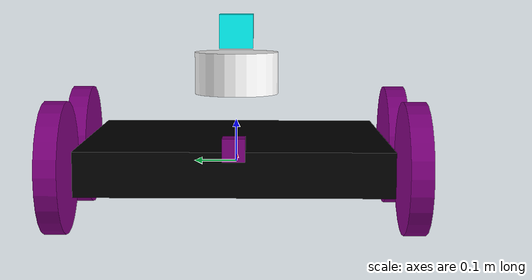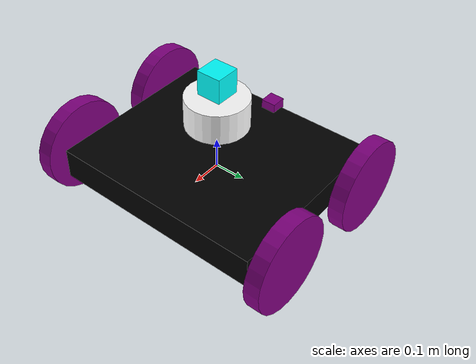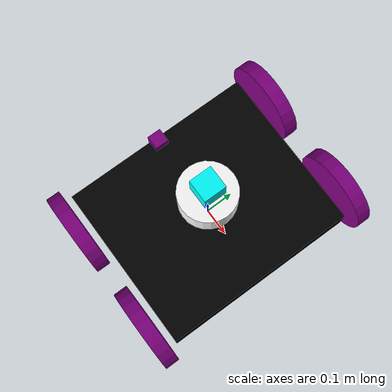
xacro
<?xml version="1.0"?>

<robot xmlns:xacro="http://wwww.ros.org/wiki/xacro" name="rover">

<link name="base_footprint"/>

<xacro:property name="constant" value="1/12"/>
<xacro:property name="mass" value="10.0"/>
<xacro:property name="width" value="0.7"/>
<xacro:property name="height" value="0.1"/>
<xacro:property name="length" value="0.6"/>

<xacro:property name="radius" value="0.15"/>

<xacro:property name="camera_link" value="0.05" /> <!-- Size of square 'camera' box -->
<xacro:property name="imu_link" value="0.05" /> <!-- Size of square 'imus' box -->
<xacro:property name="kinect_link" value="0.08" />
<link name="base_link">
    <inertial>
        <mass value="${mass}"/>
        <origin xyz="0.0 0.0 0.0" rpy="0.0 0.0 0.0"/>
        <inertia ixx="0.054" ixy="0.0"
        ixz="0.0" iyy="0.041"
        iyz="0.0" izz="0.09"/>
    </inertial>
    <visual name="">
        <origin xyz="0.0 0.0 0.0" rpy="0.0 0.0 0.0"/>
        <geometry>
            <box size="${length} ${width} ${height}" />
        </geometry>
        <material name="black">
                 <color rgba="0.0 0.0 0.0 1.0" />
        </material>

    </visual>
    <collision>
    <material>
  <ambient>0 0 0 1</ambient>
  <diffuse>0 0 0 1</diffuse>
  <specular>0.1 0.1 0.1 1</specular>
  <emissive>0 0 0 1</emissive>
</material>

        <geometry>
            <box size="${length} ${width} ${height}" />
        </geometry>
    </collision>
</link>

<joint name="base_joint" type="fixed">
    <parent link="base_footprint"/>
    <child link="base_link"/>
    <origin xyz="0 0 0.0135" rpy="0 0 0"/>
    <axis xyz="0 0 0"/>
</joint>

<!-- Rear right wheel-->

<link name="wheel_rear_right_link">
    <visual name="">
    <origin xyz="0.0 0.0 0.0" rpy="0.0 0.0 0.0"/>
        <geometry>
            <cylinder radius="${radius}" length="0.05"/>
        </geometry>
        <material name="purple">
            <color rgba="0.5 0.0 0.5 1.0" />
        </material>
    </visual>
    <collision>
        <origin xyz="0.0 0.0 0.0" rpy="0.0 0.0 0.0"/>
        <geometry>
            <cylinder radius="${radius}" length="0.05"/>
        </geometry>
    </collision>
    <inertial>
        <mass value="0.5"/>
        <origin xyz="0.0 0.0 0.0" rpy="0.0 0.0 0.0"/>
        <inertia ixx="0.0" ixy="0.0" ixz="0.0" iyy="0.0" iyz="0.0" izz="0.0"/>
    </inertial>
</link>

<joint name="wheel_rear_right_joint" type="continuous">
    <parent link="base_link"/>
    <child link="wheel_rear_right_link"/>
    <axis xyz="0 0 1"/>
    <origin xyz="0.2 0.40 0" rpy="1.57 0 0"/>
</joint>

<!-- Rear left wheel-->

<link name="wheel_rear_left_link">
    <visual name="">
    <origin xyz="0.0 0.0 0.0" rpy="0.0 0.0 0.0"/>
        <geometry>
            <cylinder radius="${radius}" length="0.05"/>
        </geometry>
        <material name="purple">
            <color rgba="0.5 0.0 0.5 1.0" />
        </material>
    </visual>
    <collision>
        <origin xyz="0.0 0.0 0.0" rpy="0.0 0.0 0.0"/>
        <geometry>
            <cylinder radius="${radius}" length="0.05"/>
        </geometry>
    </collision>
    <inertial>
        <mass value="0.5"/>
        <origin xyz="0.0 0.0 0.0" rpy="0.0 0.0 0.0"/>
        <inertia ixx="0.0" ixy="0.0" ixz="0.0" iyy="0.0" iyz="0.0" izz="0.0"/>
    </inertial>
</link>

<joint name="wheel_rear_left_joint" type="continuous">
    <parent link="base_link"/>
    <child link="wheel_rear_left_link"/>
    <axis xyz="0 0 1"/>
    <origin xyz="0.2 -0.40 0" rpy="1.57 0 0"/>
</joint>

<!-- Front right wheel-->

<link name="wheel_front_right_link">
    <visual name="">
    <origin xyz="0.0 0.0 0.0" rpy="0.0 0.0 0.0"/>
        <geometry>
            <cylinder radius="${radius}" length="0.05"/>
        </geometry>
        <material name="purple">
            <color rgba="0.5 0.0 0.5 1.0" />
        </material>
    </visual>
    <collision>
        <origin xyz="0.0 0.0 0.0" rpy="0.0 0.0 0.0"/>
        <geometry>
            <cylinder radius="${radius}" length="0.05"/>
        </geometry>
    </collision>
    <inertial>
        <mass value="0.5"/>
        <origin xyz="0.0 0.0 0.0" rpy="0.0 0.0 0.0"/>
        <inertia ixx="0.0" ixy="0.0" ixz="0.0" iyy="0.0" iyz="0.0" izz="0.0"/>
    </inertial>
</link>

<joint name="wheel_front_right_joint" type="continuous">
    <parent link="base_link"/>
    <child link="wheel_front_right_link"/>
    <axis xyz="0 0 1"/>
    <origin xyz="-0.2 0.40 0" rpy="1.57 0 0"/>
</joint>

<!-- Front left wheel-->

<link name="wheel_front_left_link">
    <visual name="">
    <origin xyz="0.0 0.0 0.0" rpy="0.0 0.0 0.0"/>
        <geometry>
            <cylinder radius="${radius}" length="0.05"/>
        </geometry>
        <material name="purple">
            <color rgba="0.5 0.0 0.5 1.0" />
        </material>
    </visual>
    <collision>
        <origin xyz="0.0 0.0 0.0" rpy="0.0 0.0 0.0"/>
        <geometry>
            <cylinder radius="${radius}" length="0.05"/>
        </geometry>
    </collision>
    <inertial>
        <mass value="0.5"/>
        <origin xyz="0.0 0.0 0.0" rpy="0.0 0.0 0.0"/>
        <inertia ixx="0.0" ixy="0.0" ixz="0.0" iyy="0.0" iyz="0.0" izz="0.0"/>
    </inertial>
</link>

<joint name="wheel_front_left_joint" type="continuous">
    <parent link="base_link"/>
    <child link="wheel_front_left_link"/>
    <axis xyz="0 0 1"/>
    <origin xyz="-0.2 -0.40 0" rpy="1.57 0 0"/>

</joint>

  <!-- Camera -->
<link name="camera_link">
    <collision>
      <origin xyz="0 0 0" rpy="0 0 0"/>
      <geometry>
    <box size="${camera_link} ${camera_link} ${camera_link}"/>
      </geometry>
    </collision>

    <visual>
      <origin xyz="0 0 0" rpy="0 0 0"/>
      <geometry>
    <box size="${camera_link} ${camera_link} ${camera_link}"/>
      </geometry>
      <material name="purple"/>
    </visual>

    <inertial>
      <mass value="1e-5" />
      <origin xyz="0 0 0" rpy="0 0 0"/>
      <inertia ixx="1e-6" ixy="0" ixz="0" iyy="1e-6" iyz="0" izz="1e-6" />
    </inertial>
</link>
<joint name="camera_joint" type="fixed">
    <axis xyz="0 1 0" />
    <origin xyz="-0.285 0 0.055" rpy="0 0.0 3.14"/>
    <parent link="base_link"/>
    <child link="camera_link"/>
</joint>

<!--Kinect-->

<link name="kinect_link">
    <collision>
      <origin xyz="0 0 0" rpy="0 0 0"/>
      <geometry>
    <box size="${kinect_link} ${kinect_link} ${kinect_link}"/>
      </geometry>
    </collision>

    <visual>
      <origin xyz="0 0 0" rpy="0 0 0"/>
      <geometry>
    <box size="${kinect_link} ${kinect_link} ${kinect_link}"/>
      </geometry>
      <material name="neon">
      <color rgba="0.0 1.0 1.0 1.0" />
      </material>

    </visual>

    <inertial>
      <mass value="1e-5" />
      <origin xyz="0 0 0" rpy="0 0 0"/>
      <inertia ixx="1e-6" ixy="0" ixz="0" iyy="1e-6" iyz="0" izz="1e-6" />
    </inertial>
</link>

<joint name="kinect_joint" type="fixed">
    <axis xyz="0 0 0.3" />
    <origin xyz="0.0 0.0 0.3" rpy="0 0 3.14"/>
    <parent link="base_link"/>
    <child link="kinect_link"/>
</joint>

<joint name="kinect_optical_joint" type="fixed">
    <axis xyz="0 0 0.3" />
    <origin xyz="0 0 0" rpy="${-pi/2} 0 ${-pi/2}"/>
    <parent link="kinect_link"/>
    <child link="kinect_link_optical"/>
</joint>

<link name="kinect_link_optical">
</link>

<gazebo reference="kinect_link">
  <sensor name="kinect_link_kinect" type="depth">
    <update_rate>20</update_rate>
    <camera>
      <horizontal_fov>2.5</horizontal_fov>
      <image>
        <width>640</width>
        <height>480</height>
        <format>R8G8B8</format>
      </image>
      <clip>
        <near>0.5</near>
        <far>100</far>
      </clip>
    </camera>
    <plugin name="kinect_link_controller" filename="libgazebo_ros_openni_kinect.so">
      <baseline>0.2</baseline>
      <alwaysOn>true</alwaysOn>
      <updateRate>1.0</updateRate>
      <cameraName>kinect</cameraName>
      <imageTopicName>/kinect/color/image_raw</imageTopicName>
      <cameraInfoTopicName>/kinect/color/kinect_info</cameraInfoTopicName>
      <depthImageTopicName>/kinect/depth/image_raw</depthImageTopicName>
      <depthImageInfoTopicName>/kinect/depth/kinect_info</depthImageInfoTopicName>
      <pointCloudTopicName>/kinect/depth/points</pointCloudTopicName>
      <frameName>kinect_link_optical</frameName>
      <pointCloudCutoff>0.5</pointCloudCutoff>
      <pointCloudCutoffMax>100.0</pointCloudCutoffMax>
      <distortionK1>0.00000001</distortionK1>
      <distortionK2>0.00000001</distortionK2>
      <distortionK3>0.00000001</distortionK3>
      <distortionT1>0.00000001</distortionT1>
      <distortionT2>0.00000001</distortionT2>
      <CxPrime>0</CxPrime>
      <Cx>0</Cx>
      <Cy>0</Cy>
      <focalLength>0</focalLength>
      <hackBaseline>0</hackBaseline>
    </plugin>
  </sensor>
</gazebo>

  <!-- IMU -->
<link name="imu_link">
    <collision>
      <origin xyz="0 0 0" rpy="0 0 0"/>
      <geometry>
    <box size="${imu_link} ${imu_link} ${imu_link}"/>
      </geometry>
    </collision>

    <visual>
      <origin xyz="0 0 0" rpy="0 0 0"/>
      <geometry>
    <box size="${imu_link} ${imu_link} ${imu_link}"/>
      </geometry>
      <material name="black">
            <color rgba="0.0 0.0 0.0 1.0" />

        </material>
    </visual>

    <inertial>
      <mass value="1e-5" />
      <origin xyz="0 0 0" rpy="0 0 0"/>
      <inertia ixx="1e-6" ixy="0" ixz="0" iyy="1e-6" iyz="0" izz="1e-6" />
    </inertial>
</link>
<joint name="imu_joint" type="fixed">
    <axis xyz="0 0 0" />
    <origin xyz="0.0 0.0 0.0" rpy="0 0 1.57"/>
    <parent link="base_link"/>
    <child link="imu_link"/>
</joint>

<!--hokuyu link and joint-->
<link name="hokuyu_link">
    <collision>
      <origin xyz="0 0 0" rpy="0 0 0"/>
      <geometry>
      <cylinder length="0.3" radius="0.1"/>
      </geometry>
    </collision>

    <visual>
      <origin xyz="0 0 0" rpy="0 0 0"/>
      <geometry>
      <cylinder length="0.1" radius="0.1"/>
      </geometry>
      <material name="white">
            <color rgba="1.0 1.0 1.0 1.0" />

        </material>
    </visual>

    <inertial>
      <mass value="1e-5" />
      <origin xyz="0 0 0" rpy="0 0 0"/>
      <inertia ixx="1e-6" ixy="0" ixz="0" iyy="1e-6" iyz="0" izz="1e-6" />
    </inertial>
</link>
<joint name="hokuyu_joint" type="fixed">
    <axis xyz="0 1 0" />
    <origin xyz="0.0 0.0 0.2" rpy="0 0 3.14"/>
    <parent link="base_link"/>
    <child link="hokuyu_link"/>
</joint>

  <!-- camera -->
  <gazebo reference="camera_link">
    <sensor type="camera" name="camera1">
      <update_rate>30.0</update_rate>
      <camera name="head">
        <horizontal_fov>1.3962634</horizontal_fov>
        <image>
          <width>800</width>
          <height>800</height>
          <format>R8G8B8</format>
        </image>
        <clip>
          <near>0.02</near>
          <far>300</far>
        </clip>
        <noise>
          <type>gaussian</type>
          <!-- Noise is sampled independently per pixel on each frame.
               That pixel's noise value is added to each of its color
               channels, which at that point lie in the range [0,1]. -->
          <mean>0.0</mean>
          <stddev>0.007</stddev>
        </noise>
      </camera>
      <plugin name="camera_controller" filename="libgazebo_ros_camera.so">
        <alwaysOn>true</alwaysOn>
        <updateRate>30.0</updateRate>
        <cameraName>mobile_robot/camera1</cameraName>
        <imageTopicName>image_raw</imageTopicName>
        <cameraInfoTopicName>camera_info</cameraInfoTopicName>
        <frameName>camera_link</frameName>
        <hackBaseline>0.07</hackBaseline>
        <distortionK1>0.0</distortionK1>
        <distortionK2>0.0</distortionK2>
        <distortionK3>0.0</distortionK3>
        <distortionT1>0.0</distortionT1>
        <distortionT2>0.0</distortionT2>
      </plugin>
    </sensor>
  </gazebo>

<gazebo>
  <plugin name="skid_steer_drive_controller" filename="libgazebo_ros_skid_steer_drive.so">
    <updateRate>100.0</updateRate>
    <robotNamespace>/</robotNamespace>
    <leftFrontJoint>wheel_front_left_joint</leftFrontJoint>
    <rightFrontJoint>wheel_front_right_joint</rightFrontJoint>
    <leftRearJoint>wheel_rear_left_joint</leftRearJoint>
    <rightRearJoint>wheel_rear_right_joint</rightRearJoint>
    <wheelSeparation>0.7</wheelSeparation>
    <wheelDiameter>0.30</wheelDiameter>
    <robotBaseFrame>base_link</robotBaseFrame>
    <torque>5</torque>
    <topicName>/cmd_vel</topicName>
    <broadcastTF>false</broadcastTF>
  </plugin>
</gazebo>

<gazebo>
    <plugin name="imu_plugin" filename="libgazebo_ros_imu.so">
      <alwaysOn>true</alwaysOn>
      <bodyName>imu_link</bodyName>
      <topicName>imu</topicName>
      <serviceName>imu_service</serviceName>
      <gaussianNoise>0.0</gaussianNoise>
      <frameName>imu_link</frameName>
      <updateRate>50.0</updateRate>
    </plugin>
  </gazebo>

<!--Hokuyo lidar plugin-->

<gazebo reference="hokuyu_link">
    <sensor type="ray" name="head_hokuyo_sensor">
      <pose>0 0 0 0 0 0</pose>
      <visualize>true</visualize>
      <update_rate>40</update_rate>
      <ray>
        <scan>
          <horizontal>
            <samples>270</samples>
            <resolution>1</resolution>
            <min_angle>-2.35</min_angle>
            <max_angle>2.35</max_angle>
          </horizontal>
        </scan>
        <range>
          <min>0.20</min>
          <max>11</max>
          <resolution>0.01</resolution>
        </range>
        <noise>
          <type>gaussian</type>
          <mean>0.0</mean>
          <stddev>0.01</stddev>
        </noise>
      </ray>
      <plugin name="gazebo_ros_head_hokuyo_controller" filename="libgazebo_ros_laser.so">
        <topicName>scan</topicName>
        <frameName>LaserScan</frameName>
      </plugin>
    </sensor>
  </gazebo>

  <!--GPS-->

   <joint name="gps_joint" type="fixed">
    <parent link="base_link"/>
    <origin xyz="0 0 0" rpy="0 0 0"/>
    <child link="gps_link"/>
  </joint>

  <link name="gps_link">
    <collision>
      <origin xyz="0 0 0" rpy="0 0 0"/>
      <geometry>
        <box size="0.02 0.02 0.02"/>
      </geometry>
    </collision>

    <visual>
      <origin xyz="0 0 0.0" rpy="0 0 0"/>
      <geometry>
        <box size="0.02 0.02 0.02"/>
      </geometry>
    </visual>

    <inertial>
      <origin xyz="0 0 0" rpy="0 0 0"/>
      <mass value="1"/>
      <inertia
        ixx="1.0" ixy="0.0" ixz="0.0"
        iyy="1.0" iyz="0.0"
        izz="1.0"/>
    </inertial>
  </link>

<gazebo>
    <plugin name="gazebo_ros_gps" filename="libhector_gazebo_ros_gps.so">
      <updateRate>10.0</updateRate>
      <robotNamespace>/</robotNamespace>
      <bodyName>gps_link</bodyName>
      <frameId>gps_link</frameId>
      <topicName>gps/fix</topicName>
      <velocityTopicName>gps/fix_velocity</velocityTopicName>
      <referenceLatitude>40.0</referenceLatitude>
      <referenceLongitude>40.0</referenceLongitude>
      <referenceHeading>90</referenceHeading>
      <referenceAltitude>10</referenceAltitude>
      <offset>0 0 0</offset>
      <drift>0.00 0.00 0.00</drift>
      <gaussianNoise>0.0 0.0 0.0</gaussianNoise>
      <velocityDrift>0.00 0.00 0.00</velocityDrift>
      <velocityGaussianNoise>0.05 0.05 0.05</velocityGaussianNoise>
    </plugin>
  </gazebo>
</robot>
